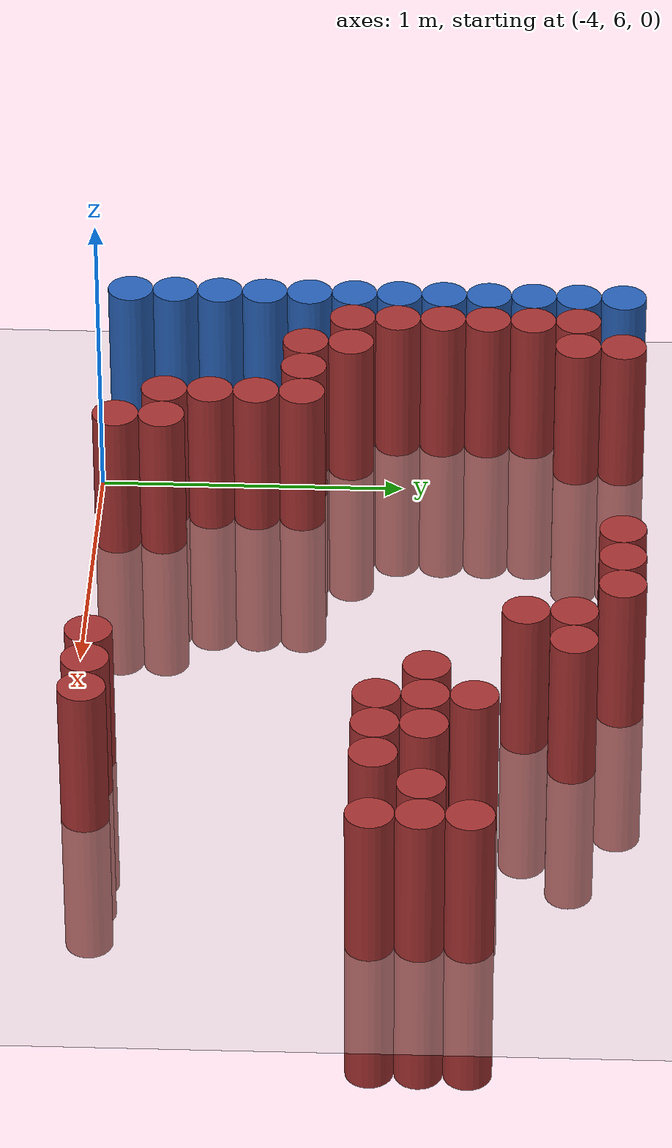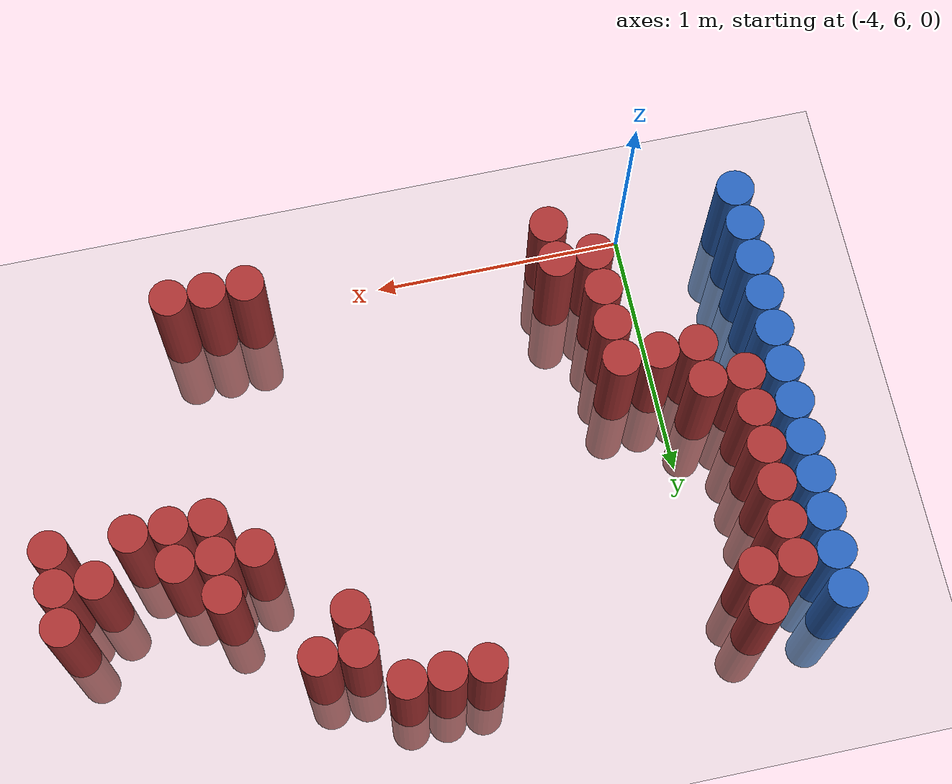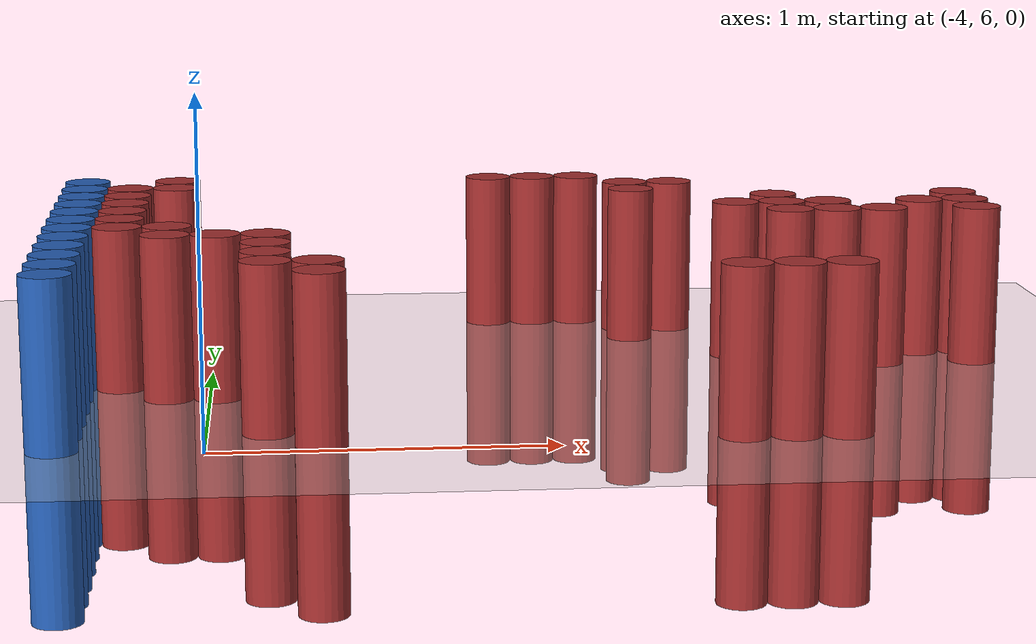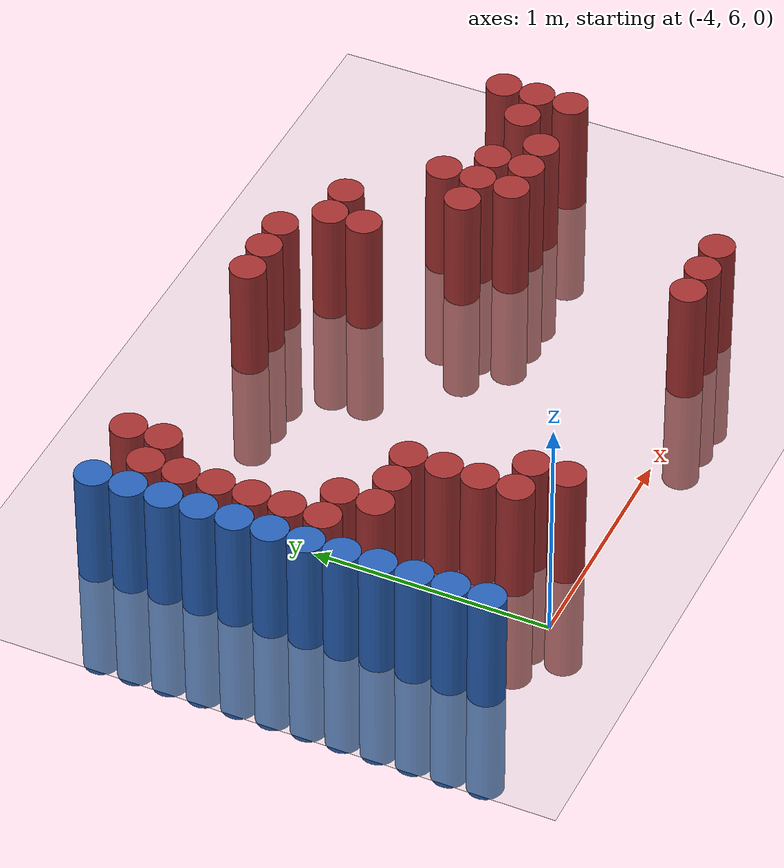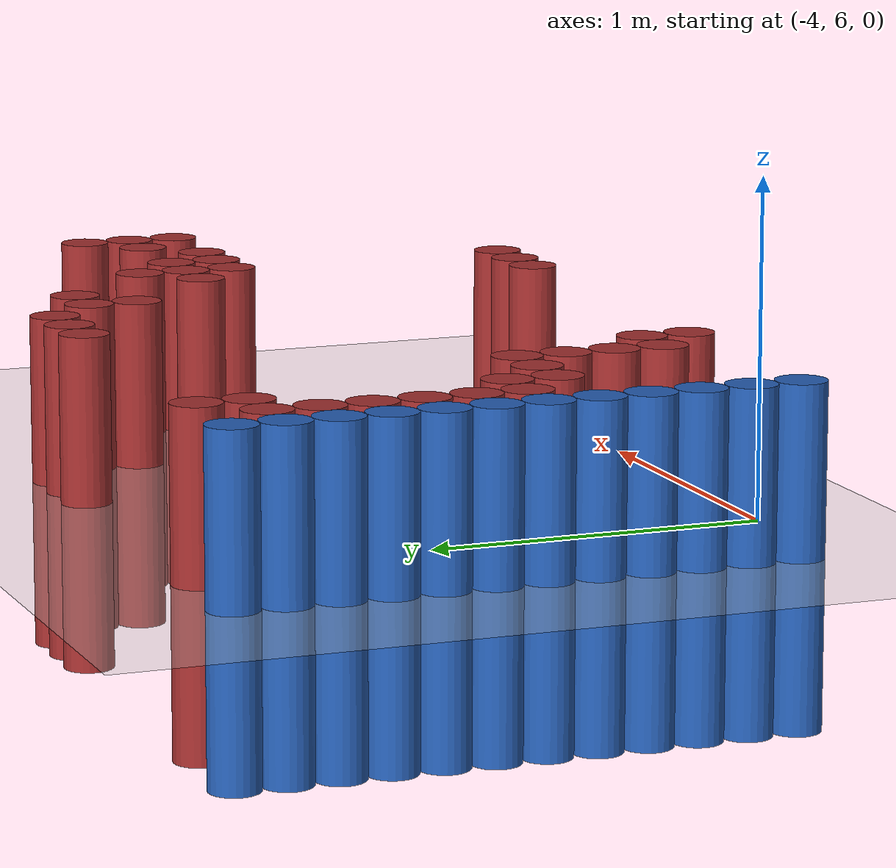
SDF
<sdf version="1.6">
 <world name="default">
  <model name="ground_plane">
   <static>1</static>
   <link name="link">
    <collision name="collision">
     <geometry><plane><normal>0 0 1</normal><size>100 100</size></plane></geometry>
     <surface><friction><ode><mu>100</mu><mu2>50</mu2></ode></friction></surface>
    </collision>
    <visual name="visual">
     <cast_shadows>0</cast_shadows>
     <geometry><plane><normal>0 0 1</normal><size>100 100</size></plane></geometry>
     <material>
      <script><uri>file://media/materials/scripts/gazebo.material</uri><name>Gazebo/Grey</name></script>
     </material>
    </visual>
   </link>
  </model>
  <model name="unit_cylinder_102">
   <static>1</static>
   <pose>-4.425000 6.075000 0.000000 0.000000 0.000000 0.000000</pose>
   <link name="link">
    <inertial>
     <mass>1</mass>
     <inertia><ixx>0.145833</ixx><ixy>0</ixy><ixz>0</ixz><iyy>0.145833</iyy><iyz>0</iyz><izz>0.125</izz></inertia>
    </inertial>
    <collision name="collision">
     <geometry><cylinder><radius>0.075000</radius><length>1</length></cylinder></geometry>
    </collision>
    <visual name="visual">
     <geometry><cylinder><radius>0.075000</radius><length>1</length></cylinder></geometry>
     <material>
      <ambient>0.152000 0.379000 0.720000 1</ambient>
      <diffuse>0.152000 0.379000 0.720000 1</diffuse>
     </material>
     <material>
      <script><name>Gazebo/Grey</name><uri>file://media/materials/scripts/gazebo.material</uri></script>
     </material>
    </visual>
   </link>
  </model>
  <model name="unit_cylinder_103">
   <static>1</static>
   <pose>-4.425000 6.225000 0.000000 0.000000 0.000000 0.000000</pose>
   <link name="link">
    <inertial>
     <mass>1</mass>
     <inertia><ixx>0.145833</ixx><ixy>0</ixy><ixz>0</ixz><iyy>0.145833</iyy><iyz>0</iyz><izz>0.125</izz></inertia>
    </inertial>
    <collision name="collision">
     <geometry><cylinder><radius>0.075000</radius><length>1</length></cylinder></geometry>
    </collision>
    <visual name="visual">
     <geometry><cylinder><radius>0.075000</radius><length>1</length></cylinder></geometry>
     <material>
      <ambient>0.152000 0.379000 0.720000 1</ambient>
      <diffuse>0.152000 0.379000 0.720000 1</diffuse>
     </material>
     <material>
      <script><name>Gazebo/Grey</name><uri>file://media/materials/scripts/gazebo.material</uri></script>
     </material>
    </visual>
   </link>
  </model>
  <model name="unit_cylinder_104">
   <static>1</static>
   <pose>-4.425000 6.375000 0.000000 0.000000 0.000000 0.000000</pose>
   <link name="link">
    <inertial>
     <mass>1</mass>
     <inertia><ixx>0.145833</ixx><ixy>0</ixy><ixz>0</ixz><iyy>0.145833</iyy><iyz>0</iyz><izz>0.125</izz></inertia>
    </inertial>
    <collision name="collision">
     <geometry><cylinder><radius>0.075000</radius><length>1</length></cylinder></geometry>
    </collision>
    <visual name="visual">
     <geometry><cylinder><radius>0.075000</radius><length>1</length></cylinder></geometry>
     <material>
      <ambient>0.152000 0.379000 0.720000 1</ambient>
      <diffuse>0.152000 0.379000 0.720000 1</diffuse>
     </material>
     <material>
      <script><name>Gazebo/Grey</name><uri>file://media/materials/scripts/gazebo.material</uri></script>
     </material>
    </visual>
   </link>
  </model>
  <model name="unit_cylinder_105">
   <static>1</static>
   <pose>-4.425000 6.525000 0.000000 0.000000 0.000000 0.000000</pose>
   <link name="link">
    <inertial>
     <mass>1</mass>
     <inertia><ixx>0.145833</ixx><ixy>0</ixy><ixz>0</ixz><iyy>0.145833</iyy><iyz>0</iyz><izz>0.125</izz></inertia>
    </inertial>
    <collision name="collision">
     <geometry><cylinder><radius>0.075000</radius><length>1</length></cylinder></geometry>
    </collision>
    <visual name="visual">
     <geometry><cylinder><radius>0.075000</radius><length>1</length></cylinder></geometry>
     <material>
      <ambient>0.152000 0.379000 0.720000 1</ambient>
      <diffuse>0.152000 0.379000 0.720000 1</diffuse>
     </material>
     <material>
      <script><name>Gazebo/Grey</name><uri>file://media/materials/scripts/gazebo.material</uri></script>
     </material>
    </visual>
   </link>
  </model>
  <model name="unit_cylinder_106">
   <static>1</static>
   <pose>-4.425000 6.675000 0.000000 0.000000 0.000000 0.000000</pose>
   <link name="link">
    <inertial>
     <mass>1</mass>
     <inertia><ixx>0.145833</ixx><ixy>0</ixy><ixz>0</ixz><iyy>0.145833</iyy><iyz>0</iyz><izz>0.125</izz></inertia>
    </inertial>
    <collision name="collision">
     <geometry><cylinder><radius>0.075000</radius><length>1</length></cylinder></geometry>
    </collision>
    <visual name="visual">
     <geometry><cylinder><radius>0.075000</radius><length>1</length></cylinder></geometry>
     <material>
      <ambient>0.152000 0.379000 0.720000 1</ambient>
      <diffuse>0.152000 0.379000 0.720000 1</diffuse>
     </material>
     <material>
      <script><name>Gazebo/Grey</name><uri>file://media/materials/scripts/gazebo.material</uri></script>
     </material>
    </visual>
   </link>
  </model>
  <model name="unit_cylinder_107">
   <static>1</static>
   <pose>-4.425000 6.825000 0.000000 0.000000 0.000000 0.000000</pose>
   <link name="link">
    <inertial>
     <mass>1</mass>
     <inertia><ixx>0.145833</ixx><ixy>0</ixy><ixz>0</ixz><iyy>0.145833</iyy><iyz>0</iyz><izz>0.125</izz></inertia>
    </inertial>
    <collision name="collision">
     <geometry><cylinder><radius>0.075000</radius><length>1</length></cylinder></geometry>
    </collision>
    <visual name="visual">
     <geometry><cylinder><radius>0.075000</radius><length>1</length></cylinder></geometry>
     <material>
      <ambient>0.152000 0.379000 0.720000 1</ambient>
      <diffuse>0.152000 0.379000 0.720000 1</diffuse>
     </material>
     <material>
      <script><name>Gazebo/Grey</name><uri>file://media/materials/scripts/gazebo.material</uri></script>
     </material>
    </visual>
   </link>
  </model>
  <model name="unit_cylinder_108">
   <static>1</static>
   <pose>-4.425000 6.975000 0.000000 0.000000 0.000000 0.000000</pose>
   <link name="link">
    <inertial>
     <mass>1</mass>
     <inertia><ixx>0.145833</ixx><ixy>0</ixy><ixz>0</ixz><iyy>0.145833</iyy><iyz>0</iyz><izz>0.125</izz></inertia>
    </inertial>
    <collision name="collision">
     <geometry><cylinder><radius>0.075000</radius><length>1</length></cylinder></geometry>
    </collision>
    <visual name="visual">
     <geometry><cylinder><radius>0.075000</radius><length>1</length></cylinder></geometry>
     <material>
      <ambient>0.152000 0.379000 0.720000 1</ambient>
      <diffuse>0.152000 0.379000 0.720000 1</diffuse>
     </material>
     <material>
      <script><name>Gazebo/Grey</name><uri>file://media/materials/scripts/gazebo.material</uri></script>
     </material>
    </visual>
   </link>
  </model>
  <model name="unit_cylinder_109">
   <static>1</static>
   <pose>-4.425000 7.125000 0.000000 0.000000 0.000000 0.000000</pose>
   <link name="link">
    <inertial>
     <mass>1</mass>
     <inertia><ixx>0.145833</ixx><ixy>0</ixy><ixz>0</ixz><iyy>0.145833</iyy><iyz>0</iyz><izz>0.125</izz></inertia>
    </inertial>
    <collision name="collision">
     <geometry><cylinder><radius>0.075000</radius><length>1</length></cylinder></geometry>
    </collision>
    <visual name="visual">
     <geometry><cylinder><radius>0.075000</radius><length>1</length></cylinder></geometry>
     <material>
      <ambient>0.152000 0.379000 0.720000 1</ambient>
      <diffuse>0.152000 0.379000 0.720000 1</diffuse>
     </material>
     <material>
      <script><name>Gazebo/Grey</name><uri>file://media/materials/scripts/gazebo.material</uri></script>
     </material>
    </visual>
   </link>
  </model>
  <model name="unit_cylinder_110">
   <static>1</static>
   <pose>-4.425000 7.275000 0.000000 0.000000 0.000000 0.000000</pose>
   <link name="link">
    <inertial>
     <mass>1</mass>
     <inertia><ixx>0.145833</ixx><ixy>0</ixy><ixz>0</ixz><iyy>0.145833</iyy><iyz>0</iyz><izz>0.125</izz></inertia>
    </inertial>
    <collision name="collision">
     <geometry><cylinder><radius>0.075000</radius><length>1</length></cylinder></geometry>
    </collision>
    <visual name="visual">
     <geometry><cylinder><radius>0.075000</radius><length>1</length></cylinder></geometry>
     <material>
      <ambient>0.152000 0.379000 0.720000 1</ambient>
      <diffuse>0.152000 0.379000 0.720000 1</diffuse>
     </material>
     <material>
      <script><name>Gazebo/Grey</name><uri>file://media/materials/scripts/gazebo.material</uri></script>
     </material>
    </visual>
   </link>
  </model>
  <model name="unit_cylinder_111">
   <static>1</static>
   <pose>-4.425000 7.425000 0.000000 0.000000 0.000000 0.000000</pose>
   <link name="link">
    <inertial>
     <mass>1</mass>
     <inertia><ixx>0.145833</ixx><ixy>0</ixy><ixz>0</ixz><iyy>0.145833</iyy><iyz>0</iyz><izz>0.125</izz></inertia>
    </inertial>
    <collision name="collision">
     <geometry><cylinder><radius>0.075000</radius><length>1</length></cylinder></geometry>
    </collision>
    <visual name="visual">
     <geometry><cylinder><radius>0.075000</radius><length>1</length></cylinder></geometry>
     <material>
      <ambient>0.152000 0.379000 0.720000 1</ambient>
      <diffuse>0.152000 0.379000 0.720000 1</diffuse>
     </material>
     <material>
      <script><name>Gazebo/Grey</name><uri>file://media/materials/scripts/gazebo.material</uri></script>
     </material>
    </visual>
   </link>
  </model>
  <model name="unit_cylinder_112">
   <static>1</static>
   <pose>-4.425000 7.575000 0.000000 0.000000 0.000000 0.000000</pose>
   <link name="link">
    <inertial>
     <mass>1</mass>
     <inertia><ixx>0.145833</ixx><ixy>0</ixy><ixz>0</ixz><iyy>0.145833</iyy><iyz>0</iyz><izz>0.125</izz></inertia>
    </inertial>
    <collision name="collision">
     <geometry><cylinder><radius>0.075000</radius><length>1</length></cylinder></geometry>
    </collision>
    <visual name="visual">
     <geometry><cylinder><radius>0.075000</radius><length>1</length></cylinder></geometry>
     <material>
      <ambient>0.152000 0.379000 0.720000 1</ambient>
      <diffuse>0.152000 0.379000 0.720000 1</diffuse>
     </material>
     <material>
      <script><name>Gazebo/Grey</name><uri>file://media/materials/scripts/gazebo.material</uri></script>
     </material>
    </visual>
   </link>
  </model>
  <model name="unit_cylinder_113">
   <static>1</static>
   <pose>-4.425000 7.725000 0.000000 0.000000 0.000000 0.000000</pose>
   <link name="link">
    <inertial>
     <mass>1</mass>
     <inertia><ixx>0.145833</ixx><ixy>0</ixy><ixz>0</ixz><iyy>0.145833</iyy><iyz>0</iyz><izz>0.125</izz></inertia>
    </inertial>
    <collision name="collision">
     <geometry><cylinder><radius>0.075000</radius><length>1</length></cylinder></geometry>
    </collision>
    <visual name="visual">
     <geometry><cylinder><radius>0.075000</radius><length>1</length></cylinder></geometry>
     <material>
      <ambient>0.152000 0.379000 0.720000 1</ambient>
      <diffuse>0.152000 0.379000 0.720000 1</diffuse>
     </material>
     <material>
      <script><name>Gazebo/Grey</name><uri>file://media/materials/scripts/gazebo.material</uri></script>
     </material>
    </visual>
   </link>
  </model>
  <model name="unit_cylinder_128">
   <static>1</static>
   <pose>-4.275000 6.825000 0.000000 0.000000 0.000000 0.000000</pose>
   <link name="link">
    <inertial>
     <mass>1</mass>
     <inertia><ixx>0.145833</ixx><ixy>0</ixy><ixz>0</ixz><iyy>0.145833</iyy><iyz>0</iyz><izz>0.125</izz></inertia>
    </inertial>
    <collision name="collision">
     <geometry><cylinder><radius>0.075000</radius><length>1</length></cylinder></geometry>
    </collision>
    <visual name="visual">
     <geometry><cylinder><radius>0.075000</radius><length>1</length></cylinder></geometry>
     <material>
      <ambient>0.648000 0.192000 0.192000 1</ambient>
      <diffuse>0.648000 0.192000 0.192000 1</diffuse>
     </material>
     <material>
      <script><name>Gazebo/Grey</name><uri>file://media/materials/scripts/gazebo.material</uri></script>
     </material>
    </visual>
   </link>
  </model>
  <model name="unit_cylinder_129">
   <static>1</static>
   <pose>-4.275000 6.975000 0.000000 0.000000 0.000000 0.000000</pose>
   <link name="link">
    <inertial>
     <mass>1</mass>
     <inertia><ixx>0.145833</ixx><ixy>0</ixy><ixz>0</ixz><iyy>0.145833</iyy><iyz>0</iyz><izz>0.125</izz></inertia>
    </inertial>
    <collision name="collision">
     <geometry><cylinder><radius>0.075000</radius><length>1</length></cylinder></geometry>
    </collision>
    <visual name="visual">
     <geometry><cylinder><radius>0.075000</radius><length>1</length></cylinder></geometry>
     <material>
      <ambient>0.648000 0.192000 0.192000 1</ambient>
      <diffuse>0.648000 0.192000 0.192000 1</diffuse>
     </material>
     <material>
      <script><name>Gazebo/Grey</name><uri>file://media/materials/scripts/gazebo.material</uri></script>
     </material>
    </visual>
   </link>
  </model>
  <model name="unit_cylinder_130">
   <static>1</static>
   <pose>-4.275000 7.125000 0.000000 0.000000 0.000000 0.000000</pose>
   <link name="link">
    <inertial>
     <mass>1</mass>
     <inertia><ixx>0.145833</ixx><ixy>0</ixy><ixz>0</ixz><iyy>0.145833</iyy><iyz>0</iyz><izz>0.125</izz></inertia>
    </inertial>
    <collision name="collision">
     <geometry><cylinder><radius>0.075000</radius><length>1</length></cylinder></geometry>
    </collision>
    <visual name="visual">
     <geometry><cylinder><radius>0.075000</radius><length>1</length></cylinder></geometry>
     <material>
      <ambient>0.648000 0.192000 0.192000 1</ambient>
      <diffuse>0.648000 0.192000 0.192000 1</diffuse>
     </material>
     <material>
      <script><name>Gazebo/Grey</name><uri>file://media/materials/scripts/gazebo.material</uri></script>
     </material>
    </visual>
   </link>
  </model>
  <model name="unit_cylinder_131">
   <static>1</static>
   <pose>-4.275000 7.275000 0.000000 0.000000 0.000000 0.000000</pose>
   <link name="link">
    <inertial>
     <mass>1</mass>
     <inertia><ixx>0.145833</ixx><ixy>0</ixy><ixz>0</ixz><iyy>0.145833</iyy><iyz>0</iyz><izz>0.125</izz></inertia>
    </inertial>
    <collision name="collision">
     <geometry><cylinder><radius>0.075000</radius><length>1</length></cylinder></geometry>
    </collision>
    <visual name="visual">
     <geometry><cylinder><radius>0.075000</radius><length>1</length></cylinder></geometry>
     <material>
      <ambient>0.648000 0.192000 0.192000 1</ambient>
      <diffuse>0.648000 0.192000 0.192000 1</diffuse>
     </material>
     <material>
      <script><name>Gazebo/Grey</name><uri>file://media/materials/scripts/gazebo.material</uri></script>
     </material>
    </visual>
   </link>
  </model>
  <model name="unit_cylinder_132">
   <static>1</static>
   <pose>-4.275000 7.425000 0.000000 0.000000 0.000000 0.000000</pose>
   <link name="link">
    <inertial>
     <mass>1</mass>
     <inertia><ixx>0.145833</ixx><ixy>0</ixy><ixz>0</ixz><iyy>0.145833</iyy><iyz>0</iyz><izz>0.125</izz></inertia>
    </inertial>
    <collision name="collision">
     <geometry><cylinder><radius>0.075000</radius><length>1</length></cylinder></geometry>
    </collision>
    <visual name="visual">
     <geometry><cylinder><radius>0.075000</radius><length>1</length></cylinder></geometry>
     <material>
      <ambient>0.648000 0.192000 0.192000 1</ambient>
      <diffuse>0.648000 0.192000 0.192000 1</diffuse>
     </material>
     <material>
      <script><name>Gazebo/Grey</name><uri>file://media/materials/scripts/gazebo.material</uri></script>
     </material>
    </visual>
   </link>
  </model>
  <model name="unit_cylinder_133">
   <static>1</static>
   <pose>-4.275000 7.575000 0.000000 0.000000 0.000000 0.000000</pose>
   <link name="link">
    <inertial>
     <mass>1</mass>
     <inertia><ixx>0.145833</ixx><ixy>0</ixy><ixz>0</ixz><iyy>0.145833</iyy><iyz>0</iyz><izz>0.125</izz></inertia>
    </inertial>
    <collision name="collision">
     <geometry><cylinder><radius>0.075000</radius><length>1</length></cylinder></geometry>
    </collision>
    <visual name="visual">
     <geometry><cylinder><radius>0.075000</radius><length>1</length></cylinder></geometry>
     <material>
      <ambient>0.648000 0.192000 0.192000 1</ambient>
      <diffuse>0.648000 0.192000 0.192000 1</diffuse>
     </material>
     <material>
      <script><name>Gazebo/Grey</name><uri>file://media/materials/scripts/gazebo.material</uri></script>
     </material>
    </visual>
   </link>
  </model>
  <model name="unit_cylinder_144">
   <static>1</static>
   <pose>-4.125000 6.675000 0.000000 0.000000 0.000000 0.000000</pose>
   <link name="link">
    <inertial>
     <mass>1</mass>
     <inertia><ixx>0.145833</ixx><ixy>0</ixy><ixz>0</ixz><iyy>0.145833</iyy><iyz>0</iyz><izz>0.125</izz></inertia>
    </inertial>
    <collision name="collision">
     <geometry><cylinder><radius>0.075000</radius><length>1</length></cylinder></geometry>
    </collision>
    <visual name="visual">
     <geometry><cylinder><radius>0.075000</radius><length>1</length></cylinder></geometry>
     <material>
      <ambient>0.648000 0.192000 0.192000 1</ambient>
      <diffuse>0.648000 0.192000 0.192000 1</diffuse>
     </material>
     <material>
      <script><name>Gazebo/Grey</name><uri>file://media/materials/scripts/gazebo.material</uri></script>
     </material>
    </visual>
   </link>
  </model>
  <model name="unit_cylinder_145">
   <static>1</static>
   <pose>-4.125000 6.825000 0.000000 0.000000 0.000000 0.000000</pose>
   <link name="link">
    <inertial>
     <mass>1</mass>
     <inertia><ixx>0.145833</ixx><ixy>0</ixy><ixz>0</ixz><iyy>0.145833</iyy><iyz>0</iyz><izz>0.125</izz></inertia>
    </inertial>
    <collision name="collision">
     <geometry><cylinder><radius>0.075000</radius><length>1</length></cylinder></geometry>
    </collision>
    <visual name="visual">
     <geometry><cylinder><radius>0.075000</radius><length>1</length></cylinder></geometry>
     <material>
      <ambient>0.648000 0.192000 0.192000 1</ambient>
      <diffuse>0.648000 0.192000 0.192000 1</diffuse>
     </material>
     <material>
      <script><name>Gazebo/Grey</name><uri>file://media/materials/scripts/gazebo.material</uri></script>
     </material>
    </visual>
   </link>
  </model>
  <model name="unit_cylinder_146">
   <static>1</static>
   <pose>-4.125000 7.575000 0.000000 0.000000 0.000000 0.000000</pose>
   <link name="link">
    <inertial>
     <mass>1</mass>
     <inertia><ixx>0.145833</ixx><ixy>0</ixy><ixz>0</ixz><iyy>0.145833</iyy><iyz>0</iyz><izz>0.125</izz></inertia>
    </inertial>
    <collision name="collision">
     <geometry><cylinder><radius>0.075000</radius><length>1</length></cylinder></geometry>
    </collision>
    <visual name="visual">
     <geometry><cylinder><radius>0.075000</radius><length>1</length></cylinder></geometry>
     <material>
      <ambient>0.648000 0.192000 0.192000 1</ambient>
      <diffuse>0.648000 0.192000 0.192000 1</diffuse>
     </material>
     <material>
      <script><name>Gazebo/Grey</name><uri>file://media/materials/scripts/gazebo.material</uri></script>
     </material>
    </visual>
   </link>
  </model>
  <model name="unit_cylinder_147">
   <static>1</static>
   <pose>-4.125000 7.725000 0.000000 0.000000 0.000000 0.000000</pose>
   <link name="link">
    <inertial>
     <mass>1</mass>
     <inertia><ixx>0.145833</ixx><ixy>0</ixy><ixz>0</ixz><iyy>0.145833</iyy><iyz>0</iyz><izz>0.125</izz></inertia>
    </inertial>
    <collision name="collision">
     <geometry><cylinder><radius>0.075000</radius><length>1</length></cylinder></geometry>
    </collision>
    <visual name="visual">
     <geometry><cylinder><radius>0.075000</radius><length>1</length></cylinder></geometry>
     <material>
      <ambient>0.648000 0.192000 0.192000 1</ambient>
      <diffuse>0.648000 0.192000 0.192000 1</diffuse>
     </material>
     <material>
      <script><name>Gazebo/Grey</name><uri>file://media/materials/scripts/gazebo.material</uri></script>
     </material>
    </visual>
   </link>
  </model>
  <model name="unit_cylinder_150">
   <static>1</static>
   <pose>-3.975000 6.675000 0.000000 0.000000 0.000000 0.000000</pose>
   <link name="link">
    <inertial>
     <mass>1</mass>
     <inertia><ixx>0.145833</ixx><ixy>0</ixy><ixz>0</ixz><iyy>0.145833</iyy><iyz>0</iyz><izz>0.125</izz></inertia>
    </inertial>
    <collision name="collision">
     <geometry><cylinder><radius>0.075000</radius><length>1</length></cylinder></geometry>
    </collision>
    <visual name="visual">
     <geometry><cylinder><radius>0.075000</radius><length>1</length></cylinder></geometry>
     <material>
      <ambient>0.648000 0.192000 0.192000 1</ambient>
      <diffuse>0.648000 0.192000 0.192000 1</diffuse>
     </material>
     <material>
      <script><name>Gazebo/Grey</name><uri>file://media/materials/scripts/gazebo.material</uri></script>
     </material>
    </visual>
   </link>
  </model>
  <model name="unit_cylinder_154">
   <static>1</static>
   <pose>-3.825000 6.225000 0.000000 0.000000 0.000000 0.000000</pose>
   <link name="link">
    <inertial>
     <mass>1</mass>
     <inertia><ixx>0.145833</ixx><ixy>0</ixy><ixz>0</ixz><iyy>0.145833</iyy><iyz>0</iyz><izz>0.125</izz></inertia>
    </inertial>
    <collision name="collision">
     <geometry><cylinder><radius>0.075000</radius><length>1</length></cylinder></geometry>
    </collision>
    <visual name="visual">
     <geometry><cylinder><radius>0.075000</radius><length>1</length></cylinder></geometry>
     <material>
      <ambient>0.648000 0.192000 0.192000 1</ambient>
      <diffuse>0.648000 0.192000 0.192000 1</diffuse>
     </material>
     <material>
      <script><name>Gazebo/Grey</name><uri>file://media/materials/scripts/gazebo.material</uri></script>
     </material>
    </visual>
   </link>
  </model>
  <model name="unit_cylinder_155">
   <static>1</static>
   <pose>-3.825000 6.375000 0.000000 0.000000 0.000000 0.000000</pose>
   <link name="link">
    <inertial>
     <mass>1</mass>
     <inertia><ixx>0.145833</ixx><ixy>0</ixy><ixz>0</ixz><iyy>0.145833</iyy><iyz>0</iyz><izz>0.125</izz></inertia>
    </inertial>
    <collision name="collision">
     <geometry><cylinder><radius>0.075000</radius><length>1</length></cylinder></geometry>
    </collision>
    <visual name="visual">
     <geometry><cylinder><radius>0.075000</radius><length>1</length></cylinder></geometry>
     <material>
      <ambient>0.648000 0.192000 0.192000 1</ambient>
      <diffuse>0.648000 0.192000 0.192000 1</diffuse>
     </material>
     <material>
      <script><name>Gazebo/Grey</name><uri>file://media/materials/scripts/gazebo.material</uri></script>
     </material>
    </visual>
   </link>
  </model>
  <model name="unit_cylinder_156">
   <static>1</static>
   <pose>-3.825000 6.525000 0.000000 0.000000 0.000000 0.000000</pose>
   <link name="link">
    <inertial>
     <mass>1</mass>
     <inertia><ixx>0.145833</ixx><ixy>0</ixy><ixz>0</ixz><iyy>0.145833</iyy><iyz>0</iyz><izz>0.125</izz></inertia>
    </inertial>
    <collision name="collision">
     <geometry><cylinder><radius>0.075000</radius><length>1</length></cylinder></geometry>
    </collision>
    <visual name="visual">
     <geometry><cylinder><radius>0.075000</radius><length>1</length></cylinder></geometry>
     <material>
      <ambient>0.648000 0.192000 0.192000 1</ambient>
      <diffuse>0.648000 0.192000 0.192000 1</diffuse>
     </material>
     <material>
      <script><name>Gazebo/Grey</name><uri>file://media/materials/scripts/gazebo.material</uri></script>
     </material>
    </visual>
   </link>
  </model>
  <model name="unit_cylinder_157">
   <static>1</static>
   <pose>-3.825000 6.675000 0.000000 0.000000 0.000000 0.000000</pose>
   <link name="link">
    <inertial>
     <mass>1</mass>
     <inertia><ixx>0.145833</ixx><ixy>0</ixy><ixz>0</ixz><iyy>0.145833</iyy><iyz>0</iyz><izz>0.125</izz></inertia>
    </inertial>
    <collision name="collision">
     <geometry><cylinder><radius>0.075000</radius><length>1</length></cylinder></geometry>
    </collision>
    <visual name="visual">
     <geometry><cylinder><radius>0.075000</radius><length>1</length></cylinder></geometry>
     <material>
      <ambient>0.648000 0.192000 0.192000 1</ambient>
      <diffuse>0.648000 0.192000 0.192000 1</diffuse>
     </material>
     <material>
      <script><name>Gazebo/Grey</name><uri>file://media/materials/scripts/gazebo.material</uri></script>
     </material>
    </visual>
   </link>
  </model>
  <model name="unit_cylinder_159">
   <static>1</static>
   <pose>-3.675000 6.075000 0.000000 0.000000 0.000000 0.000000</pose>
   <link name="link">
    <inertial>
     <mass>1</mass>
     <inertia><ixx>0.145833</ixx><ixy>0</ixy><ixz>0</ixz><iyy>0.145833</iyy><iyz>0</iyz><izz>0.125</izz></inertia>
    </inertial>
    <collision name="collision">
     <geometry><cylinder><radius>0.075000</radius><length>1</length></cylinder></geometry>
    </collision>
    <visual name="visual">
     <geometry><cylinder><radius>0.075000</radius><length>1</length></cylinder></geometry>
     <material>
      <ambient>0.648000 0.192000 0.192000 1</ambient>
      <diffuse>0.648000 0.192000 0.192000 1</diffuse>
     </material>
     <material>
      <script><name>Gazebo/Grey</name><uri>file://media/materials/scripts/gazebo.material</uri></script>
     </material>
    </visual>
   </link>
  </model>
  <model name="unit_cylinder_160">
   <static>1</static>
   <pose>-3.675000 6.225000 0.000000 0.000000 0.000000 0.000000</pose>
   <link name="link">
    <inertial>
     <mass>1</mass>
     <inertia><ixx>0.145833</ixx><ixy>0</ixy><ixz>0</ixz><iyy>0.145833</iyy><iyz>0</iyz><izz>0.125</izz></inertia>
    </inertial>
    <collision name="collision">
     <geometry><cylinder><radius>0.075000</radius><length>1</length></cylinder></geometry>
    </collision>
    <visual name="visual">
     <geometry><cylinder><radius>0.075000</radius><length>1</length></cylinder></geometry>
     <material>
      <ambient>0.648000 0.192000 0.192000 1</ambient>
      <diffuse>0.648000 0.192000 0.192000 1</diffuse>
     </material>
     <material>
      <script><name>Gazebo/Grey</name><uri>file://media/materials/scripts/gazebo.material</uri></script>
     </material>
    </visual>
   </link>
  </model>
  <model name="unit_cylinder_167">
   <static>1</static>
   <pose>-3.075000 7.725000 0.000000 0.000000 0.000000 0.000000</pose>
   <link name="link">
    <inertial>
     <mass>1</mass>
     <inertia><ixx>0.145833</ixx><ixy>0</ixy><ixz>0</ixz><iyy>0.145833</iyy><iyz>0</iyz><izz>0.125</izz></inertia>
    </inertial>
    <collision name="collision">
     <geometry><cylinder><radius>0.075000</radius><length>1</length></cylinder></geometry>
    </collision>
    <visual name="visual">
     <geometry><cylinder><radius>0.075000</radius><length>1</length></cylinder></geometry>
     <material>
      <ambient>0.648000 0.192000 0.192000 1</ambient>
      <diffuse>0.648000 0.192000 0.192000 1</diffuse>
     </material>
     <material>
      <script><name>Gazebo/Grey</name><uri>file://media/materials/scripts/gazebo.material</uri></script>
     </material>
    </visual>
   </link>
  </model>
  <model name="unit_cylinder_173">
   <static>1</static>
   <pose>-2.925000 7.725000 0.000000 0.000000 0.000000 0.000000</pose>
   <link name="link">
    <inertial>
     <mass>1</mass>
     <inertia><ixx>0.145833</ixx><ixy>0</ixy><ixz>0</ixz><iyy>0.145833</iyy><iyz>0</iyz><izz>0.125</izz></inertia>
    </inertial>
    <collision name="collision">
     <geometry><cylinder><radius>0.075000</radius><length>1</length></cylinder></geometry>
    </collision>
    <visual name="visual">
     <geometry><cylinder><radius>0.075000</radius><length>1</length></cylinder></geometry>
     <material>
      <ambient>0.648000 0.192000 0.192000 1</ambient>
      <diffuse>0.648000 0.192000 0.192000 1</diffuse>
     </material>
     <material>
      <script><name>Gazebo/Grey</name><uri>file://media/materials/scripts/gazebo.material</uri></script>
     </material>
    </visual>
   </link>
  </model>
  <model name="unit_cylinder_178">
   <static>1</static>
   <pose>-2.775000 7.725000 0.000000 0.000000 0.000000 0.000000</pose>
   <link name="link">
    <inertial>
     <mass>1</mass>
     <inertia><ixx>0.145833</ixx><ixy>0</ixy><ixz>0</ixz><iyy>0.145833</iyy><iyz>0</iyz><izz>0.125</izz></inertia>
    </inertial>
    <collision name="collision">
     <geometry><cylinder><radius>0.075000</radius><length>1</length></cylinder></geometry>
    </collision>
    <visual name="visual">
     <geometry><cylinder><radius>0.075000</radius><length>1</length></cylinder></geometry>
     <material>
      <ambient>0.648000 0.192000 0.192000 1</ambient>
      <diffuse>0.648000 0.192000 0.192000 1</diffuse>
     </material>
     <material>
      <script><name>Gazebo/Grey</name><uri>file://media/materials/scripts/gazebo.material</uri></script>
     </material>
    </visual>
   </link>
  </model>
  <model name="unit_cylinder_186">
   <static>1</static>
   <pose>-2.625000 7.425000 0.000000 0.000000 0.000000 0.000000</pose>
   <link name="link">
    <inertial>
     <mass>1</mass>
     <inertia><ixx>0.145833</ixx><ixy>0</ixy><ixz>0</ixz><iyy>0.145833</iyy><iyz>0</iyz><izz>0.125</izz></inertia>
    </inertial>
    <collision name="collision">
     <geometry><cylinder><radius>0.075000</radius><length>1</length></cylinder></geometry>
    </collision>
    <visual name="visual">
     <geometry><cylinder><radius>0.075000</radius><length>1</length></cylinder></geometry>
     <material>
      <ambient>0.648000 0.192000 0.192000 1</ambient>
      <diffuse>0.648000 0.192000 0.192000 1</diffuse>
     </material>
     <material>
      <script><name>Gazebo/Grey</name><uri>file://media/materials/scripts/gazebo.material</uri></script>
     </material>
    </visual>
   </link>
  </model>
  <model name="unit_cylinder_187">
   <static>1</static>
   <pose>-2.625000 7.575000 0.000000 0.000000 0.000000 0.000000</pose>
   <link name="link">
    <inertial>
     <mass>1</mass>
     <inertia><ixx>0.145833</ixx><ixy>0</ixy><ixz>0</ixz><iyy>0.145833</iyy><iyz>0</iyz><izz>0.125</izz></inertia>
    </inertial>
    <collision name="collision">
     <geometry><cylinder><radius>0.075000</radius><length>1</length></cylinder></geometry>
    </collision>
    <visual name="visual">
     <geometry><cylinder><radius>0.075000</radius><length>1</length></cylinder></geometry>
     <material>
      <ambient>0.648000 0.192000 0.192000 1</ambient>
      <diffuse>0.648000 0.192000 0.192000 1</diffuse>
     </material>
     <material>
      <script><name>Gazebo/Grey</name><uri>file://media/materials/scripts/gazebo.material</uri></script>
     </material>
    </visual>
   </link>
  </model>
  <model name="unit_cylinder_194">
   <static>1</static>
   <pose>-2.475000 6.075000 0.000000 0.000000 0.000000 0.000000</pose>
   <link name="link">
    <inertial>
     <mass>1</mass>
     <inertia><ixx>0.145833</ixx><ixy>0</ixy><ixz>0</ixz><iyy>0.145833</iyy><iyz>0</iyz><izz>0.125</izz></inertia>
    </inertial>
    <collision name="collision">
     <geometry><cylinder><radius>0.075000</radius><length>1</length></cylinder></geometry>
    </collision>
    <visual name="visual">
     <geometry><cylinder><radius>0.075000</radius><length>1</length></cylinder></geometry>
     <material>
      <ambient>0.648000 0.192000 0.192000 1</ambient>
      <diffuse>0.648000 0.192000 0.192000 1</diffuse>
     </material>
     <material>
      <script><name>Gazebo/Grey</name><uri>file://media/materials/scripts/gazebo.material</uri></script>
     </material>
    </visual>
   </link>
  </model>
  <model name="unit_cylinder_195">
   <static>1</static>
   <pose>-2.475000 7.575000 0.000000 0.000000 0.000000 0.000000</pose>
   <link name="link">
    <inertial>
     <mass>1</mass>
     <inertia><ixx>0.145833</ixx><ixy>0</ixy><ixz>0</ixz><iyy>0.145833</iyy><iyz>0</iyz><izz>0.125</izz></inertia>
    </inertial>
    <collision name="collision">
     <geometry><cylinder><radius>0.075000</radius><length>1</length></cylinder></geometry>
    </collision>
    <visual name="visual">
     <geometry><cylinder><radius>0.075000</radius><length>1</length></cylinder></geometry>
     <material>
      <ambient>0.648000 0.192000 0.192000 1</ambient>
      <diffuse>0.648000 0.192000 0.192000 1</diffuse>
     </material>
     <material>
      <script><name>Gazebo/Grey</name><uri>file://media/materials/scripts/gazebo.material</uri></script>
     </material>
    </visual>
   </link>
  </model>
  <model name="unit_cylinder_199">
   <static>1</static>
   <pose>-2.325000 6.075000 0.000000 0.000000 0.000000 0.000000</pose>
   <link name="link">
    <inertial>
     <mass>1</mass>
     <inertia><ixx>0.145833</ixx><ixy>0</ixy><ixz>0</ixz><iyy>0.145833</iyy><iyz>0</iyz><izz>0.125</izz></inertia>
    </inertial>
    <collision name="collision">
     <geometry><cylinder><radius>0.075000</radius><length>1</length></cylinder></geometry>
    </collision>
    <visual name="visual">
     <geometry><cylinder><radius>0.075000</radius><length>1</length></cylinder></geometry>
     <material>
      <ambient>0.648000 0.192000 0.192000 1</ambient>
      <diffuse>0.648000 0.192000 0.192000 1</diffuse>
     </material>
     <material>
      <script><name>Gazebo/Grey</name><uri>file://media/materials/scripts/gazebo.material</uri></script>
     </material>
    </visual>
   </link>
  </model>
  <model name="unit_cylinder_200">
   <static>1</static>
   <pose>-2.325000 7.125000 0.000000 0.000000 0.000000 0.000000</pose>
   <link name="link">
    <inertial>
     <mass>1</mass>
     <inertia><ixx>0.145833</ixx><ixy>0</ixy><ixz>0</ixz><iyy>0.145833</iyy><iyz>0</iyz><izz>0.125</izz></inertia>
    </inertial>
    <collision name="collision">
     <geometry><cylinder><radius>0.075000</radius><length>1</length></cylinder></geometry>
    </collision>
    <visual name="visual">
     <geometry><cylinder><radius>0.075000</radius><length>1</length></cylinder></geometry>
     <material>
      <ambient>0.648000 0.192000 0.192000 1</ambient>
      <diffuse>0.648000 0.192000 0.192000 1</diffuse>
     </material>
     <material>
      <script><name>Gazebo/Grey</name><uri>file://media/materials/scripts/gazebo.material</uri></script>
     </material>
    </visual>
   </link>
  </model>
  <model name="unit_cylinder_204">
   <static>1</static>
   <pose>-2.175000 6.075000 0.000000 0.000000 0.000000 0.000000</pose>
   <link name="link">
    <inertial>
     <mass>1</mass>
     <inertia><ixx>0.145833</ixx><ixy>0</ixy><ixz>0</ixz><iyy>0.145833</iyy><iyz>0</iyz><izz>0.125</izz></inertia>
    </inertial>
    <collision name="collision">
     <geometry><cylinder><radius>0.075000</radius><length>1</length></cylinder></geometry>
    </collision>
    <visual name="visual">
     <geometry><cylinder><radius>0.075000</radius><length>1</length></cylinder></geometry>
     <material>
      <ambient>0.648000 0.192000 0.192000 1</ambient>
      <diffuse>0.648000 0.192000 0.192000 1</diffuse>
     </material>
     <material>
      <script><name>Gazebo/Grey</name><uri>file://media/materials/scripts/gazebo.material</uri></script>
     </material>
    </visual>
   </link>
  </model>
  <model name="unit_cylinder_205">
   <static>1</static>
   <pose>-2.175000 6.975000 0.000000 0.000000 0.000000 0.000000</pose>
   <link name="link">
    <inertial>
     <mass>1</mass>
     <inertia><ixx>0.145833</ixx><ixy>0</ixy><ixz>0</ixz><iyy>0.145833</iyy><iyz>0</iyz><izz>0.125</izz></inertia>
    </inertial>
    <collision name="collision">
     <geometry><cylinder><radius>0.075000</radius><length>1</length></cylinder></geometry>
    </collision>
    <visual name="visual">
     <geometry><cylinder><radius>0.075000</radius><length>1</length></cylinder></geometry>
     <material>
      <ambient>0.648000 0.192000 0.192000 1</ambient>
      <diffuse>0.648000 0.192000 0.192000 1</diffuse>
     </material>
     <material>
      <script><name>Gazebo/Grey</name><uri>file://media/materials/scripts/gazebo.material</uri></script>
     </material>
    </visual>
   </link>
  </model>
  <model name="unit_cylinder_206">
   <static>1</static>
   <pose>-2.175000 7.125000 0.000000 0.000000 0.000000 0.000000</pose>
   <link name="link">
    <inertial>
     <mass>1</mass>
     <inertia><ixx>0.145833</ixx><ixy>0</ixy><ixz>0</ixz><iyy>0.145833</iyy><iyz>0</iyz><izz>0.125</izz></inertia>
    </inertial>
    <collision name="collision">
     <geometry><cylinder><radius>0.075000</radius><length>1</length></cylinder></geometry>
    </collision>
    <visual name="visual">
     <geometry><cylinder><radius>0.075000</radius><length>1</length></cylinder></geometry>
     <material>
      <ambient>0.648000 0.192000 0.192000 1</ambient>
      <diffuse>0.648000 0.192000 0.192000 1</diffuse>
     </material>
     <material>
      <script><name>Gazebo/Grey</name><uri>file://media/materials/scripts/gazebo.material</uri></script>
     </material>
    </visual>
   </link>
  </model>
  <model name="unit_cylinder_207">
   <static>1</static>
   <pose>-2.175000 7.275000 0.000000 0.000000 0.000000 0.000000</pose>
   <link name="link">
    <inertial>
     <mass>1</mass>
     <inertia><ixx>0.145833</ixx><ixy>0</ixy><ixz>0</ixz><iyy>0.145833</iyy><iyz>0</iyz><izz>0.125</izz></inertia>
    </inertial>
    <collision name="collision">
     <geometry><cylinder><radius>0.075000</radius><length>1</length></cylinder></geometry>
    </collision>
    <visual name="visual">
     <geometry><cylinder><radius>0.075000</radius><length>1</length></cylinder></geometry>
     <material>
      <ambient>0.648000 0.192000 0.192000 1</ambient>
      <diffuse>0.648000 0.192000 0.192000 1</diffuse>
     </material>
     <material>
      <script><name>Gazebo/Grey</name><uri>file://media/materials/scripts/gazebo.material</uri></script>
     </material>
    </visual>
   </link>
  </model>
  <model name="unit_cylinder_210">
   <static>1</static>
   <pose>-2.025000 6.975000 0.000000 0.000000 0.000000 0.000000</pose>
   <link name="link">
    <inertial>
     <mass>1</mass>
     <inertia><ixx>0.145833</ixx><ixy>0</ixy><ixz>0</ixz><iyy>0.145833</iyy><iyz>0</iyz><izz>0.125</izz></inertia>
    </inertial>
    <collision name="collision">
     <geometry><cylinder><radius>0.075000</radius><length>1</length></cylinder></geometry>
    </collision>
    <visual name="visual">
     <geometry><cylinder><radius>0.075000</radius><length>1</length></cylinder></geometry>
     <material>
      <ambient>0.648000 0.192000 0.192000 1</ambient>
      <diffuse>0.648000 0.192000 0.192000 1</diffuse>
     </material>
     <material>
      <script><name>Gazebo/Grey</name><uri>file://media/materials/scripts/gazebo.material</uri></script>
     </material>
    </visual>
   </link>
  </model>
  <model name="unit_cylinder_211">
   <static>1</static>
   <pose>-2.025000 7.125000 0.000000 0.000000 0.000000 0.000000</pose>
   <link name="link">
    <inertial>
     <mass>1</mass>
     <inertia><ixx>0.145833</ixx><ixy>0</ixy><ixz>0</ixz><iyy>0.145833</iyy><iyz>0</iyz><izz>0.125</izz></inertia>
    </inertial>
    <collision name="collision">
     <geometry><cylinder><radius>0.075000</radius><length>1</length></cylinder></geometry>
    </collision>
    <visual name="visual">
     <geometry><cylinder><radius>0.075000</radius><length>1</length></cylinder></geometry>
     <material>
      <ambient>0.648000 0.192000 0.192000 1</ambient>
      <diffuse>0.648000 0.192000 0.192000 1</diffuse>
     </material>
     <material>
      <script><name>Gazebo/Grey</name><uri>file://media/materials/scripts/gazebo.material</uri></script>
     </material>
    </visual>
   </link>
  </model>
  <model name="unit_cylinder_216">
   <static>1</static>
   <pose>-1.875000 6.975000 0.000000 0.000000 0.000000 0.000000</pose>
   <link name="link">
    <inertial>
     <mass>1</mass>
     <inertia><ixx>0.145833</ixx><ixy>0</ixy><ixz>0</ixz><iyy>0.145833</iyy><iyz>0</iyz><izz>0.125</izz></inertia>
    </inertial>
    <collision name="collision">
     <geometry><cylinder><radius>0.075000</radius><length>1</length></cylinder></geometry>
    </collision>
    <visual name="visual">
     <geometry><cylinder><radius>0.075000</radius><length>1</length></cylinder></geometry>
     <material>
      <ambient>0.648000 0.192000 0.192000 1</ambient>
      <diffuse>0.648000 0.192000 0.192000 1</diffuse>
     </material>
     <material>
      <script><name>Gazebo/Grey</name><uri>file://media/materials/scripts/gazebo.material</uri></script>
     </material>
    </visual>
   </link>
  </model>
  <model name="unit_cylinder_221">
   <static>1</static>
   <pose>-1.725000 7.125000 0.000000 0.000000 0.000000 0.000000</pose>
   <link name="link">
    <inertial>
     <mass>1</mass>
     <inertia><ixx>0.145833</ixx><ixy>0</ixy><ixz>0</ixz><iyy>0.145833</iyy><iyz>0</iyz><izz>0.125</izz></inertia>
    </inertial>
    <collision name="collision">
     <geometry><cylinder><radius>0.075000</radius><length>1</length></cylinder></geometry>
    </collision>
    <visual name="visual">
     <geometry><cylinder><radius>0.075000</radius><length>1</length></cylinder></geometry>
     <material>
      <ambient>0.648000 0.192000 0.192000 1</ambient>
      <diffuse>0.648000 0.192000 0.192000 1</diffuse>
     </material>
     <material>
      <script><name>Gazebo/Grey</name><uri>file://media/materials/scripts/gazebo.material</uri></script>
     </material>
    </visual>
   </link>
  </model>
  <model name="unit_cylinder_227">
   <static>1</static>
   <pose>-1.575000 6.975000 0.000000 0.000000 0.000000 0.000000</pose>
   <link name="link">
    <inertial>
     <mass>1</mass>
     <inertia><ixx>0.145833</ixx><ixy>0</ixy><ixz>0</ixz><iyy>0.145833</iyy><iyz>0</iyz><izz>0.125</izz></inertia>
    </inertial>
    <collision name="collision">
     <geometry><cylinder><radius>0.075000</radius><length>1</length></cylinder></geometry>
    </collision>
    <visual name="visual">
     <geometry><cylinder><radius>0.075000</radius><length>1</length></cylinder></geometry>
     <material>
      <ambient>0.648000 0.192000 0.192000 1</ambient>
      <diffuse>0.648000 0.192000 0.192000 1</diffuse>
     </material>
     <material>
      <script><name>Gazebo/Grey</name><uri>file://media/materials/scripts/gazebo.material</uri></script>
     </material>
    </visual>
   </link>
  </model>
  <model name="unit_cylinder_228">
   <static>1</static>
   <pose>-1.575000 7.125000 0.000000 0.000000 0.000000 0.000000</pose>
   <link name="link">
    <inertial>
     <mass>1</mass>
     <inertia><ixx>0.145833</ixx><ixy>0</ixy><ixz>0</ixz><iyy>0.145833</iyy><iyz>0</iyz><izz>0.125</izz></inertia>
    </inertial>
    <collision name="collision">
     <geometry><cylinder><radius>0.075000</radius><length>1</length></cylinder></geometry>
    </collision>
    <visual name="visual">
     <geometry><cylinder><radius>0.075000</radius><length>1</length></cylinder></geometry>
     <material>
      <ambient>0.648000 0.192000 0.192000 1</ambient>
      <diffuse>0.648000 0.192000 0.192000 1</diffuse>
     </material>
     <material>
      <script><name>Gazebo/Grey</name><uri>file://media/materials/scripts/gazebo.material</uri></script>
     </material>
    </visual>
   </link>
  </model>
  <model name="unit_cylinder_229">
   <static>1</static>
   <pose>-1.575000 7.275000 0.000000 0.000000 0.000000 0.000000</pose>
   <link name="link">
    <inertial>
     <mass>1</mass>
     <inertia><ixx>0.145833</ixx><ixy>0</ixy><ixz>0</ixz><iyy>0.145833</iyy><iyz>0</iyz><izz>0.125</izz></inertia>
    </inertial>
    <collision name="collision">
     <geometry><cylinder><radius>0.075000</radius><length>1</length></cylinder></geometry>
    </collision>
    <visual name="visual">
     <geometry><cylinder><radius>0.075000</radius><length>1</length></cylinder></geometry>
     <material>
      <ambient>0.648000 0.192000 0.192000 1</ambient>
      <diffuse>0.648000 0.192000 0.192000 1</diffuse>
     </material>
     <material>
      <script><name>Gazebo/Grey</name><uri>file://media/materials/scripts/gazebo.material</uri></script>
     </material>
    </visual>
   </link>
  </model>
 </world>
</sdf>
